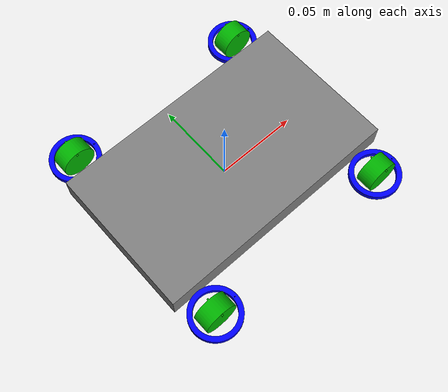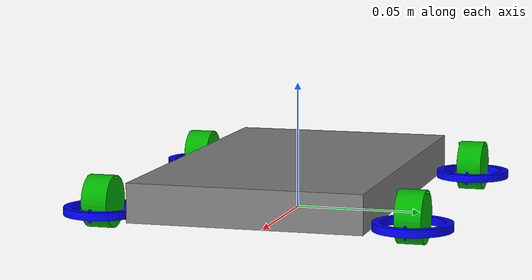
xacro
<?xml version="1.0"?>
<robot name="swerve_drive_robot" xmlns:xacro="http://ros.org/wiki/xacro">

    <xacro:include filename="$(find swerve_drive_robot_description)/urdf/color_palette.xacro"/>
    <xacro:include filename="$(find swerve_drive_robot_description)/urdf/base/base.urdf.xacro"/>
    <xacro:include filename="$(find swerve_drive_robot_description)/urdf/swerve_drive/swerve_drive.urdf.xacro"/>

    <link name="base_footprint"/>

    <xacro:base_v0 link_name="base_link" parent="base_footprint">
		<origin xyz="0 0 0.005"/>
	</xacro:base_v0>

	<!-- base_height 0.15 base_length 0.09 steering_radius 0.015-->
	<!-- Front Right Swerve Drive-->
	<xacro:swerve_drive_v0 prefix="front_right" parent="base_link">
		<origin xyz="0.06 -0.06 0" />
		<!--steering-->
		<axis xyz="0 0 1"/>
		<!--wheel-->
		<axis xyz="0 1 0"/>
	</xacro:swerve_drive_v0>

	<!-- Front Left Swerve Drive-->
	<xacro:swerve_drive_v0 prefix="front_left" parent="base_link">
		<origin xyz="0.06 0.06 0" />
		<!--steering-->
		<axis xyz="0 0 1"/>
		<!--wheel-->
		<axis xyz="0 1 0"/>
	</xacro:swerve_drive_v0>

	<!-- Rear Right Swerve Drive-->
	<xacro:swerve_drive_v0 prefix="rear_right" parent="base_link">
		<origin xyz="-0.06 -0.06 0" />
		<!--steering-->
		<axis xyz="0 0 1"/>
		<!--wheel-->
		<axis xyz="0 1 0"/>
	</xacro:swerve_drive_v0>

	<!-- Rear Left Swerve Drive-->
	<xacro:swerve_drive_v0 prefix="rear_left" parent="base_link">
		<origin xyz="-0.06 0.06 0"/>
		<!--steering-->
		<axis xyz="0 0 1"/>
		<!--wheel-->
		<axis xyz="0 1 0"/>
	</xacro:swerve_drive_v0>

	<!-- ===============  Transmission =============== -->
	<xacro:arg name="load_trans_s" default="false" />
	<xacro:arg name="load_trans_w" default="false" />

	<xacro:if value="$(arg load_trans_s)">
		<xacro:steering_trans_v0 prefix="front_right" />
		<xacro:steering_trans_v0 prefix="front_left" />
		<xacro:steering_trans_v0 prefix="rear_right" />
		<xacro:steering_trans_v0 prefix="rear_left" />
	</xacro:if>

	<xacro:if value="$(arg load_trans_w)">
		<xacro:wheel_trans_v0 prefix="front_right" />
		<xacro:wheel_trans_v0 prefix="front_left" />
		<xacro:wheel_trans_v0 prefix="rear_right" />
		<xacro:wheel_trans_v0 prefix="rear_left" />
	</xacro:if>
		<!-- =============== Gazebo =============== -->
	<!-- Namespace -->
	<gazebo>
		<plugin name="gazebo_ros_control_wheel" filename="libgazebo_ros_control.so">
			<robotNamespace>/swerve_drive_robot/wheel</robotNamespace>
			<robotSimType>gazebo_ros_control/DefaultRobotHWSim</robotSimType>
			<legacyModeNS>true</legacyModeNS>
		</plugin>
	</gazebo>

	<gazebo>
		<plugin name="gazebo_ros_control_steering" filename="libgazebo_ros_control.so">
			<robotNamespace>/swerve_drive_robot/steering</robotNamespace>
			<robotSimType>gazebo_ros_control/DefaultRobotHWSim</robotSimType>
			<legacyModeNS>true</legacyModeNS>
		</plugin>
	</gazebo>

	<xacro:base_gazebo_v0 link_name="base_link"/>

	<xacro:swerve_drive_gazebo_v0 prefix="front_right"/>
	<xacro:swerve_drive_gazebo_v0 prefix="front_left"/>
	<xacro:swerve_drive_gazebo_v0 prefix="rear_right"/>
	<xacro:swerve_drive_gazebo_v0 prefix="rear_left"/>

</robot>

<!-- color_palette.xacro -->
<robot xmlns:xacro="http://ros.org/wiki/xacro">

    <material name="green">
        <color rgba="0 0.7 0 1"/>
    </material>

    <material name="gray">
		<color rgba="0.5 0.5 0.5 2.5"/>
    </material>

    <material name="blue">
		<color rgba="0 0 1 1"/>
	</material>

</robot>

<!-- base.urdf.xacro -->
<robot xmlns:xacro="http://ros.org/wiki/xacro">

	<xacro:include filename="$(find swerve_drive_robot_description)/urdf/common.xacro"/>
	<xacro:include filename="$(find swerve_drive_robot_description)/urdf/base/base.gazebo.xacro"/>

	<xacro:property name="base_height" value="0.15"/>
    <xacro:property name="base_width" value="0.09"/>
    <xacro:property name="base_depth" value="0.015"/>
    <xacro:property name="base_mass" value="0.5"/>

	<xacro:macro name="base_v0" params="link_name parent *joint_origin">
		<joint name="${link_name}_joint" type="fixed">
			<xacro:insert_block name="joint_origin"/>
			<parent link="${parent}"/>
			<child link="${link_name}"/>
		</joint>

		<link name="${link_name}">
			<visual>
				<geometry>
					<mesh filename="package://swerve_drive_robot_description/meshes/stl/base.STL"/>
				</geometry>
				<origin xyz="0 0 0" />
				<material name="gray"/>
			</visual>
			<collision>
				<geometry>
					<box size="${base_height} ${base_width} ${base_depth}"/>
				</geometry>
				<origin xyz="0 0 ${base_depth/2}" />
			</collision>
			<inertial>
				<origin xyz="0 0 ${base_depth/2}"/>
				<xacro:box_inertial mass="${base_mass}" height="${base_height}" width="${base_width}" depth="${base_depth}"/>
			</inertial>
		</link>
	</xacro:macro>

</robot>

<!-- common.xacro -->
<robot xmlns:xacro="http://ros.org/wiki/xacro">

    <xacro:property name="M_PI" value="3.14159274"/>

    <xacro:macro name="cylinder_inertial" params="mass radius length">
        <mass value="${mass}"/>
        <inertia ixx="${((radius*radius)/4 + (length*length)/12)*mass}" ixy="0" ixz="0" iyy="${((radius*radius)/4 + (length*length)/12)*mass}" iyz="0" izz="${(mass*radius*radius)/2}" />
    </xacro:macro>

    <xacro:macro name="box_inertial" params="mass height width depth">
        <mass value="${mass}"/>
        <inertia ixx="${(mass*(width*width+depth*depth))/12}" ixy="0" ixz="0" iyy="${(mass*(height*height+depth*depth))/12}" iyz="0" izz="${(mass*(height*height+width*width))/12}" />
    </xacro:macro>
</robot>

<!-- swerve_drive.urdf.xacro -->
<robot xmlns:xacro="http://ros.org/wiki/xacro">

    <xacro:include filename="$(find swerve_drive_robot_description)/urdf/common.xacro"/>
    <xacro:include filename="$(find swerve_drive_robot_description)/urdf/swerve_drive/steering.transmission.xacro"/>
    <xacro:include filename="$(find swerve_drive_robot_description)/urdf/swerve_drive/wheel.transmission.xacro"/>
    <xacro:include filename="$(find swerve_drive_robot_description)/urdf/swerve_drive/swerve_drive.gazebo.xacro"/>

    <xacro:property name="steering_radius" value="0.015"/>
    <xacro:property name="steering_length" value="0.003"/>
    <xacro:property name="steering_mass" value="0.01"/>

    <xacro:property name="wheel_radius" value="0.01"/>
    <xacro:property name="wheel_length" value="0.01"/>
    <xacro:property name="wheel_mass" value="0.05"/>

    <xacro:macro name="swerve_drive_v0" params="prefix parent *joint_origin *joint_axis_s *joint_axis_w">
        <!-- steering -->
        <joint name="${prefix}_steering_joint" type="revolute">
            <xacro:insert_block name="joint_origin"/>
            <parent link="${parent}"/>
            <child link="${prefix}_steering_link"/>
            <xacro:insert_block name="joint_axis_s"/>
            <limit lower="-${M_PI}" upper="${M_PI}" effort="10" velocity="10"/>
        </joint>

        <link name="${prefix}_steering_link">
            <visual>
                <geometry>
                    <mesh filename="package://swerve_drive_robot_description/meshes/stl/steering.STL"/>
                </geometry>
                <origin xyz="0 0 0" />
                <material name="blue"/>
            </visual>
            <collision>
                <geometry>
                    <cylinder radius="${steering_radius}" length="${steering_length}"/>
                </geometry>
                <origin xyz="0 0 ${steering_length/2}"/>
            </collision>
            <inertial>
                <origin xyz="0 0 ${steering_length/2}"/>
                <xacro:cylinder_inertial mass="${steering_mass}" radius="${steering_radius}" length="${steering_length}"/>
            </inertial>
        </link>

        <!-- wheel -->
        <joint name="${prefix}_wheel_joint" type="continuous">
            <origin xyz="0 0 0.005"/>
            <parent link="${prefix}_steering_link"/>
            <child link="${prefix}_wheel_link"/>
            <xacro:insert_block name="joint_axis_w"/>
            <limit velocity="15.0" effort="0.001" />
            <dynamics damping="0"/>
        </joint>

        <link name="${prefix}_wheel_link">
            <visual>
                <geometry>
                    <mesh filename="package://swerve_drive_robot_description/meshes/stl/wheel.STL"/>
                </geometry>
                <origin xyz="0 -${wheel_length/2} 0"/>
                <material name="green"/>
            </visual>
            <collision>
                <origin xyz="0 0 0" rpy="${M_PI/2} 0 0"/>
                <geometry>
                    <cylinder radius="${wheel_radius}" length="${wheel_length}"/>
                </geometry>
            </collision>
            <inertial>
                <origin xyz="0 0 0" rpy="${M_PI/2} 0 0"/>
                <xacro:cylinder_inertial mass="${wheel_mass}" radius="${wheel_radius}" length="${wheel_length}"/>
            </inertial>
        </link>
    </xacro:macro>

</robot>
